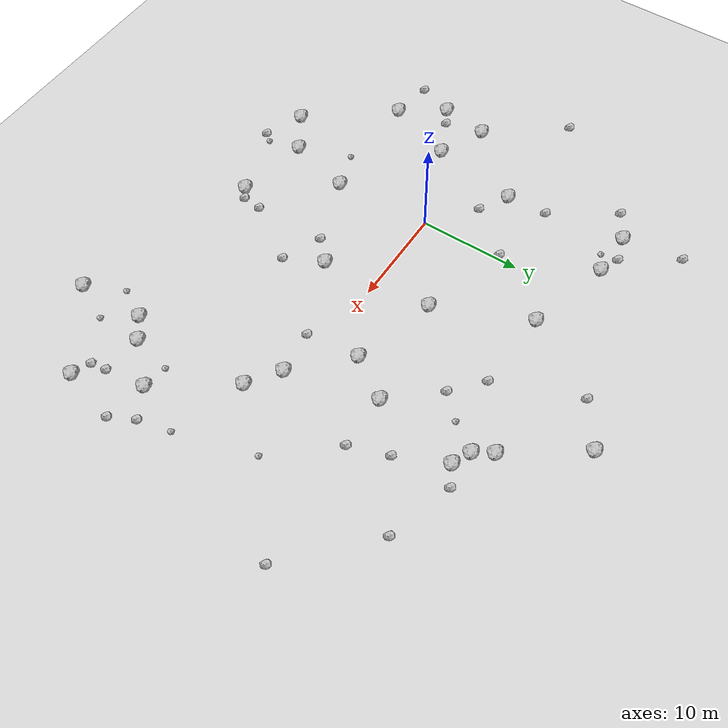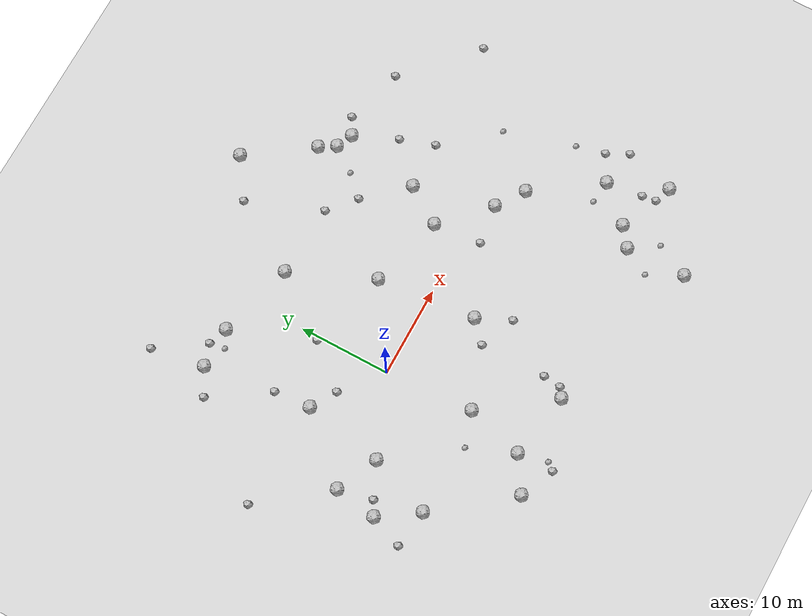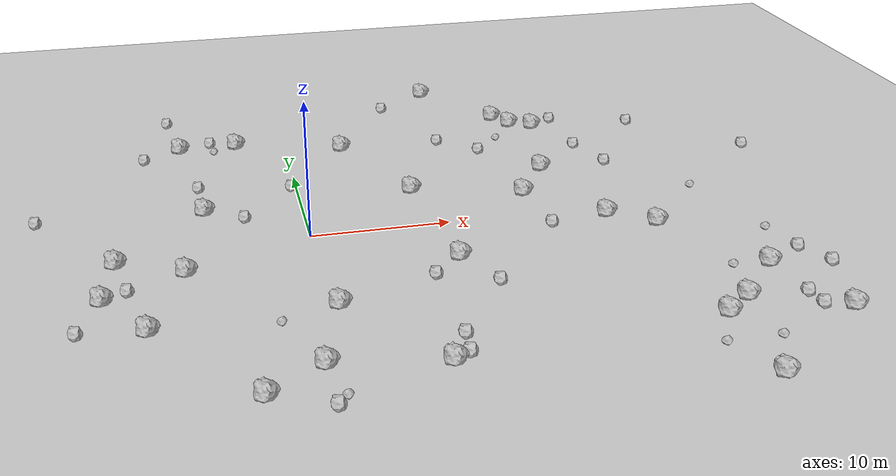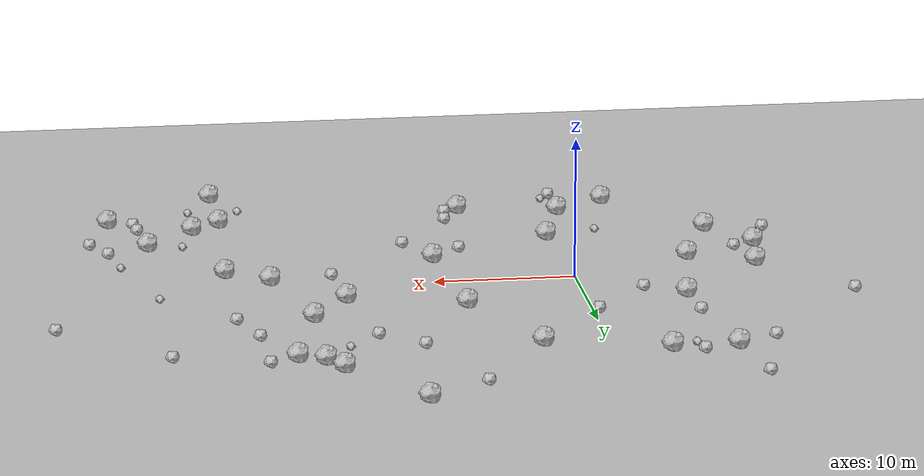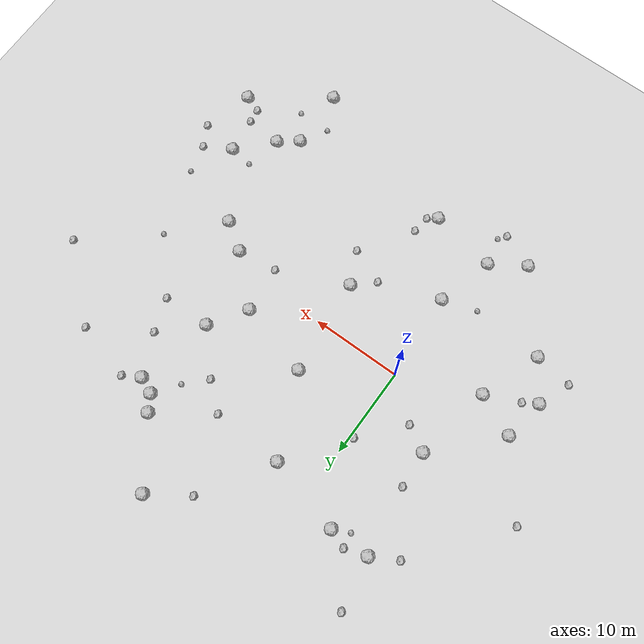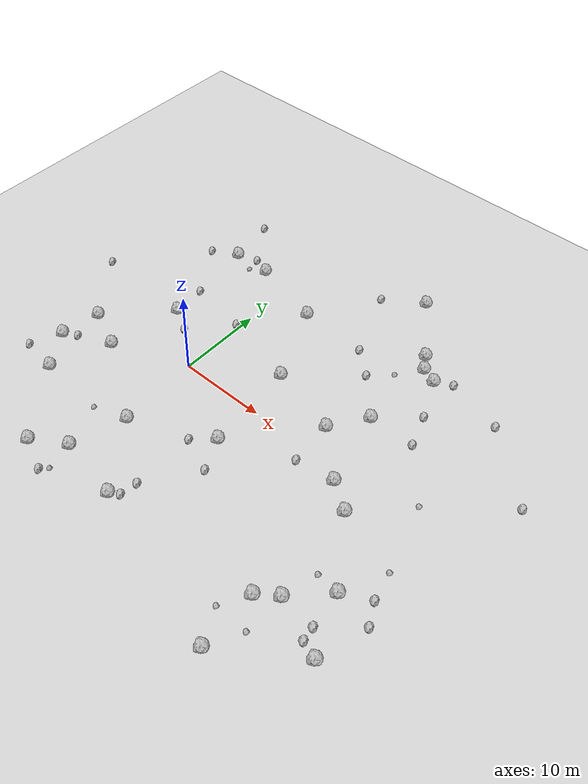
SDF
<sdf version="1.6">
 <world name="default">
  <include><uri>model://custom_ground</uri></include>
  <include><uri>model://sun</uri></include>
  <model name="rock1_0_0">
   <include><uri>model://rock1</uri><pose>23.90514248581144 -15.776609992672268 0.5 0 0 0</pose></include>
  </model>
  <model name="rock1_0_1">
   <include><uri>model://rock1</uri><pose>24.062548666263957 -22.37770992525668 0.5 0 0 0</pose></include>
  </model>
  <model name="rock1_0_2">
   <include><uri>model://rock1</uri><pose>19.26466761740881 7.367127554734566 0.5 0 0 0</pose></include>
  </model>
  <model name="rock1_0_3">
   <include><uri>model://rock1</uri><pose>9.498476944416563 -5.250346106173144 0.5 0 0 0</pose></include>
  </model>
  <model name="rock1_0_4">
   <include><uri>model://rock1</uri><pose>-3.8976977318944677 16.866911622512205 0.5 0 0 0</pose></include>
  </model>
  <model name="rock1_0_5">
   <include><uri>model://rock1</uri><pose>31.94172232389188 -16.715653397427694 0.5 0 0 0</pose></include>
  </model>
  <model name="rock1_0_6">
   <include><uri>model://rock1</uri><pose>24.478854565243772 -3.426902629569124 0.5 0 0 0</pose></include>
  </model>
  <model name="rock1_0_7">
   <include><uri>model://rock1</uri><pose>29.421577492951286 -10.552254862496937 0.5 0 0 0</pose></include>
  </model>
  <model name="rock1_0_8">
   <include><uri>model://rock1</uri><pose>-6.9936545619670625 5.128483801502298 0.5 0 0 0</pose></include>
  </model>
  <model name="rock1_0_9">
   <include><uri>model://rock1</uri><pose>13.553108611587476 25.226569998773982 0.5 0 0 0</pose></include>
  </model>
  <model name="rock1_0_10">
   <include><uri>model://rock1</uri><pose>-13.872759898773555 -6.137383635538246 0.5 0 0 0</pose></include>
  </model>
  <model name="rock1_0_11">
   <include><uri>model://rock1</uri><pose>-13.1394932801294 -1.5010698386584096 0.5 0 0 0</pose></include>
  </model>
  <model name="rock1_0_12">
   <include><uri>model://rock1</uri><pose>-8.408873832621174 16.891115773531894 0.5 0 0 0</pose></include>
  </model>
  <model name="rock1_0_13">
   <include><uri>model://rock1</uri><pose>21.20148329498128 15.84222829981411 0.5 0 0 0</pose></include>
  </model>
  <model name="rock1_0_14">
   <include><uri>model://rock1</uri><pose>21.454445798479398 -1.3343171631813036 0.5 0 0 0</pose></include>
  </model>
  <model name="rock1_0_15">
   <include><uri>model://rock1</uri><pose>-1.089683898890744 -15.893842803204794 0.5 0 0 0</pose></include>
  </model>
  <model name="rock1_0_16">
   <include><uri>model://rock1</uri><pose>18.347664019257643 18.383973501463053 0.5 0 0 0</pose></include>
  </model>
  <model name="rock1_0_17">
   <include><uri>model://rock1</uri><pose>-11.060439580061969 -10.285798714422906 0.5 0 0 0</pose></include>
  </model>
  <model name="rock1_0_18">
   <include><uri>model://rock1</uri><pose>8.442152969146182 5.593030265820673 0.5 0 0 0</pose></include>
  </model>
  <model name="rock1_0_19">
   <include><uri>model://rock1</uri><pose>-4.7624591109978915 -18.244246839159466 0.5 0 0 0</pose></include>
  </model>
  <model name="rock1_0_20">
   <include><uri>model://rock1</uri><pose>19.401934575711216 16.643141567928872 0.5 0 0 0</pose></include>
  </model>
  <model name="rock1_0_21">
   <include><uri>model://rock1</uri><pose>4.497002273492988 14.609899977009633 0.5 0 0 0</pose></include>
  </model>
  <model name="rock1_0_22">
   <include><uri>model://rock1</uri><pose>6.170723235934371 -17.154163934171493 0.5 0 0 0</pose></include>
  </model>
  <model name="rock1_0_23">
   <include><uri>model://rock1</uri><pose>-8.576273701318122 -3.5485500679403046 0.5 0 0 0</pose></include>
  </model>
  <model name="rock1_0_24">
   <include><uri>model://rock1</uri><pose>25.96695102715183 -14.200774754953787 0.5 0 0 0</pose></include>
  </model>
  <model name="rock1_0_25">
   <include><uri>model://rock1</uri><pose>16.59132923096994 3.333806554088234 0.5 0 0 0</pose></include>
  </model>
  <model name="rock1_0_26">
   <include><uri>model://rock1</uri><pose>0.6459155607628944 -9.634874376459607 0.5 0 0 0</pose></include>
  </model>
  <model name="rock2_0_0">
   <include><uri>model://rock2</uri><pose>32.30616476708222 -8.924000438733266 0.3 0 0 0</pose></include>
  </model>
  <model name="rock2_0_1">
   <include><uri>model://rock2</uri><pose>-1.0612061455158504 -19.86772602399803 0.3 0 0 0</pose></include>
  </model>
  <model name="rock2_0_2">
   <include><uri>model://rock2</uri><pose>23.078787285256567 16.915643389325453 0.3 0 0 0</pose></include>
  </model>
  <model name="rock2_0_3">
   <include><uri>model://rock2</uri><pose>7.185711933578595 -16.44457044044877 0.3 0 0 0</pose></include>
  </model>
  <model name="rock2_0_4">
   <include><uri>model://rock2</uri><pose>-4.26046943274577 3.5204913949392704 0.3 0 0 0</pose></include>
  </model>
  <model name="rock2_0_5">
   <include><uri>model://rock2</uri><pose>23.254146154322385 11.205621321905355 0.3 0 0 0</pose></include>
  </model>
  <model name="rock2_0_6">
   <include><uri>model://rock2</uri><pose>11.2030750738626 -8.892081518628753 0.3 0 0 0</pose></include>
  </model>
  <model name="rock2_0_7">
   <include><uri>model://rock2</uri><pose>-15.296130021034877 -9.714030185738284 0.3 0 0 0</pose></include>
  </model>
  <model name="rock2_0_8">
   <include><uri>model://rock2</uri><pose>7.419158112340991 -14.495429219400325 0.3 0 0 0</pose></include>
  </model>
  <model name="rock2_0_9">
   <include><uri>model://rock2</uri><pose>36.86140968460093 8.229020657344442 0.3 0 0 0</pose></include>
  </model>
  <model name="rock2_0_10">
   <include><uri>model://rock2</uri><pose>9.254284133685001 22.369434763716278 0.3 0 0 0</pose></include>
  </model>
  <model name="rock2_0_11">
   <include><uri>model://rock2</uri><pose>-0.4052610552809526 8.019389821687177 0.3 0 0 0</pose></include>
  </model>
  <model name="rock2_0_12">
   <include><uri>model://rock2</uri><pose>-12.352176524135752 -5.242946420622573 0.3 0 0 0</pose></include>
  </model>
  <model name="rock2_0_13">
   <include><uri>model://rock2</uri><pose>17.061243782203846 -1.8883533749555141 0.3 0 0 0</pose></include>
  </model>
  <model name="rock2_0_14">
   <include><uri>model://rock2</uri><pose>24.520232445384316 7.459599209034792 0.3 0 0 0</pose></include>
  </model>
  <model name="rock2_0_15">
   <include><uri>model://rock2</uri><pose>-18.828745005168837 5.716877561441294 0.3 0 0 0</pose></include>
  </model>
  <model name="rock2_0_16">
   <include><uri>model://rock2</uri><pose>15.282183353533831 11.772567445829203 0.3 0 0 0</pose></include>
  </model>
  <model name="rock2_0_17">
   <include><uri>model://rock2</uri><pose>33.50856588868285 -11.270543672061947 0.3 0 0 0</pose></include>
  </model>
  <model name="rock2_0_18">
   <include><uri>model://rock2</uri><pose>7.314118963043498 -7.276590151645291 0.3 0 0 0</pose></include>
  </model>
  <model name="rock2_0_19">
   <include><uri>model://rock2</uri><pose>-9.397347539297522 22.761748379742535 0.3 0 0 0</pose></include>
  </model>
  <model name="rock2_0_20">
   <include><uri>model://rock2</uri><pose>12.401107659494244 14.251508081529977 0.3 0 0 0</pose></include>
  </model>
  <model name="rock2_0_21">
   <include><uri>model://rock2</uri><pose>29.88710672770015 -14.523434083755633 0.3 0 0 0</pose></include>
  </model>
  <model name="rock2_0_22">
   <include><uri>model://rock2</uri><pose>29.459380678787625 15.066071057537954 0.3 0 0 0</pose></include>
  </model>
  <model name="rock2_0_23">
   <include><uri>model://rock2</uri><pose>-11.29419561924662 15.308042618079895 0.3 0 0 0</pose></include>
  </model>
  <model name="rock2_0_24">
   <include><uri>model://rock2</uri><pose>-7.299938241637456 9.184068201793757 0.3 0 0 0</pose></include>
  </model>
  <model name="rock2_0_25">
   <include><uri>model://rock2</uri><pose>30.09931239799326 -16.049530003374965 0.3 0 0 0</pose></include>
  </model>
  <model name="rock2_0_26">
   <include><uri>model://rock2</uri><pose>-6.004776256208981 17.66972991553162 0.3 0 0 0</pose></include>
  </model>
  <model name="rock3_0_0">
   <include><uri>model://rock3</uri><pose>25.86657156645606 -18.753002055815145 0.2 0 0 0</pose></include>
  </model>
  <model name="rock3_0_1">
   <include><uri>model://rock3</uri><pose>-3.159205451215648 -10.89454419106223 0.2 0 0 0</pose></include>
  </model>
  <model name="rock3_0_2">
   <include><uri>model://rock3</uri><pose>17.40953230557073 13.950407362589822 0.2 0 0 0</pose></include>
  </model>
  <model name="rock3_0_3">
   <include><uri>model://rock3</uri><pose>26.871188802014558 -10.28639626866536 0.2 0 0 0</pose></include>
  </model>
  <model name="rock3_0_4">
   <include><uri>model://rock3</uri><pose>22.222023410509003 -18.73594644117499 0.2 0 0 0</pose></include>
  </model>
  <model name="rock3_0_5">
   <include><uri>model://rock3</uri><pose>23.85044268488356 -15.854169367772979 0.2 0 0 0</pose></include>
  </model>
  <model name="rock3_0_6">
   <include><uri>model://rock3</uri><pose>-5.76801378556274 15.979278366247378 0.2 0 0 0</pose></include>
  </model>
  <model name="rock3_0_7">
   <include><uri>model://rock3</uri><pose>-0.41517145102861974 -19.076126693718315 0.2 0 0 0</pose></include>
  </model>
  <model name="rock3_0_8">
   <include><uri>model://rock3</uri><pose>29.352678654066594 1.848030815742142 0.2 0 0 0</pose></include>
  </model>
  <model name="rock3_0_9">
   <include><uri>model://rock3</uri><pose>31.571709674600825 -5.792991380420425 0.2 0 0 0</pose></include>
  </model>
 </world>
</sdf>
